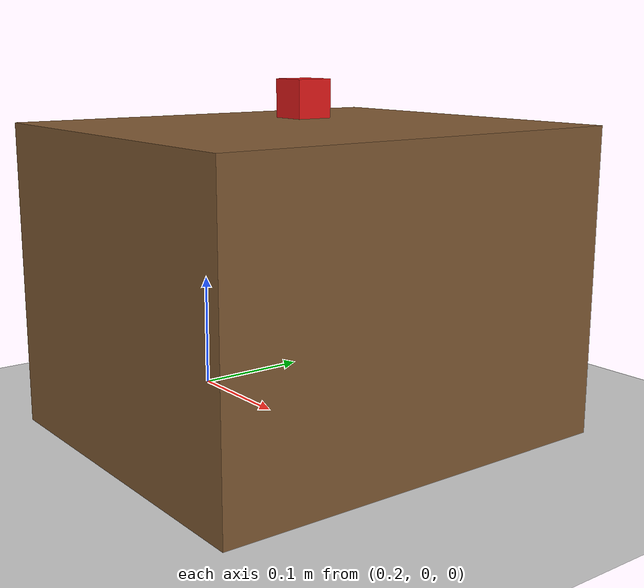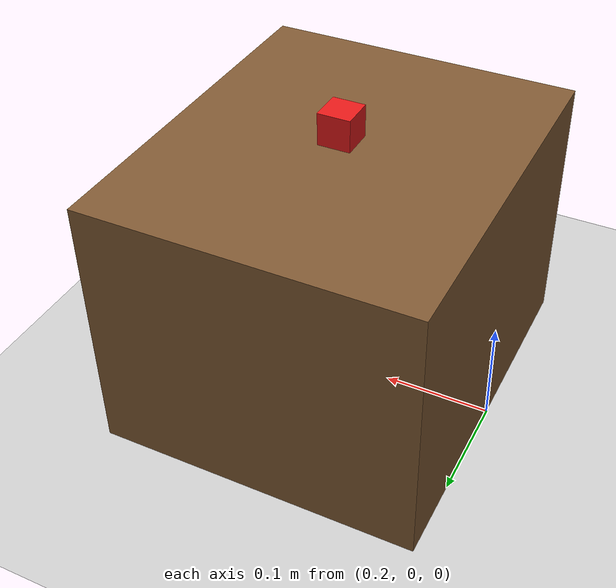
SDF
<?xml version="1.0" ?>
<sdf version="1.8">
  <world name="table_cube_world">
    <!-- Physics engine settings -->
    <physics name="1ms" type="ignored">
      <max_step_size>0.001</max_step_size>
      <real_time_factor>1.0</real_time_factor>
    </physics>

    <!-- Plugins -->
    <plugin
      filename="gz-sim-physics-system"
      name="gz::sim::systems::Physics">
    </plugin>
    <plugin
      filename="gz-sim-user-commands-system"
      name="gz::sim::systems::UserCommands">
    </plugin>
    <plugin
      filename="gz-sim-scene-broadcaster-system"
      name="gz::sim::systems::SceneBroadcaster">
    </plugin>

    <!-- Sun Light -->
    <light type="directional" name="sun">
      <cast_shadows>true</cast_shadows>
      <pose>0 0 10 0 0 0</pose>
      <diffuse>0.8 0.8 0.8 1</diffuse>
      <specular>0.2 0.2 0.2 1</specular>
      <direction>-0.5 0.1 -0.9</direction>
    </light>

    <!-- Ground Plane -->
    <model name="ground_plane">
      <static>true</static>
      <link name="link">
        <collision name="collision">
          <geometry>
            <plane>
              <normal>0 0 1</normal>
              <size>100 100</size>
            </plane>
          </geometry>
        </collision>
        <visual name="visual">
          <geometry>
            <plane>
              <normal>0 0 1</normal>
              <size>100 100</size>
            </plane>
          </geometry>
          <material>
            <ambient>0.8 0.8 0.8 1</ambient>
            <diffuse>0.8 0.8 0.8 1</diffuse>
            <specular>0.8 0.8 0.8 1</specular>
          </material>
        </visual>
      </link>
    </model>

    <!-- WORK TABLE (In front of robot at X=0.35m) -->
    <model name="work_table">
      <static>true</static>
      <pose>0.35 0 0.125 0 0 0</pose>
      <link name="table_link">
        <collision name="table_collision">
          <geometry>
            <box>
              <size>0.30 0.35 0.25</size>
            </box>
          </geometry>
        </collision>
        <visual name="table_visual">
          <geometry>
            <box>
              <size>0.30 0.35 0.25</size>
            </box>
          </geometry>
          <material>
            <ambient>0.3 0.2 0.1 1</ambient>
            <diffuse>0.5 0.35 0.2 1</diffuse>
          </material>
        </visual>
      </link>
    </model>

    <!-- TARGET CUBE TO PICK (Sitting on table top) -->
    <model name="target_cube">
      <pose>0.35 0 0.27 0 0 0</pose>
      <link name="cube_link">
        <inertial>
          <mass>0.05</mass>
          <inertia>
            <ixx>0.0000075</ixx>
            <iyy>0.0000075</iyy>
            <izz>0.0000075</izz>
          </inertia>
        </inertial>
        <collision name="cube_collision">
          <geometry>
            <box>
              <size>0.03 0.03 0.03</size>
            </box>
          </geometry>
          <surface>
            <friction>
              <ode>
                <mu>1.5</mu>
                <mu2>1.5</mu2>
              </ode>
            </friction>
          </surface>
        </collision>
        <visual name="cube_visual">
          <geometry>
            <box>
              <size>0.03 0.03 0.03</size>
            </box>
          </geometry>
          <material>
            <ambient>1.0 0.0 0.0 1</ambient>
            <diffuse>0.9 0.1 0.1 1</diffuse>
          </material>
        </visual>
      </link>
    </model>

  </world>
</sdf>
